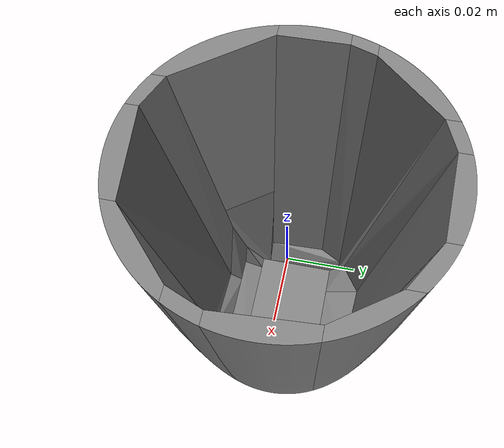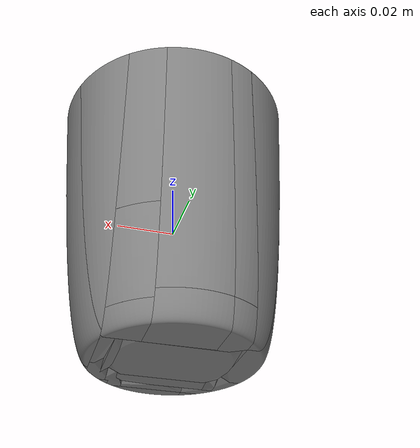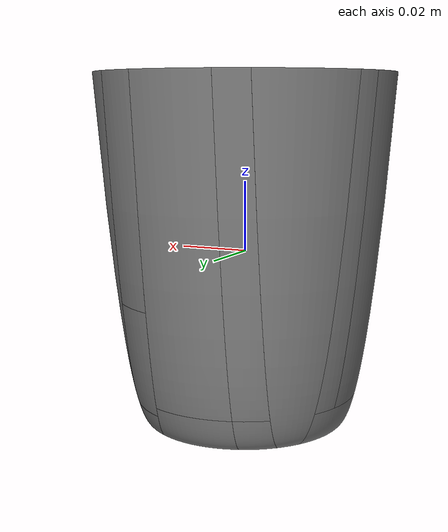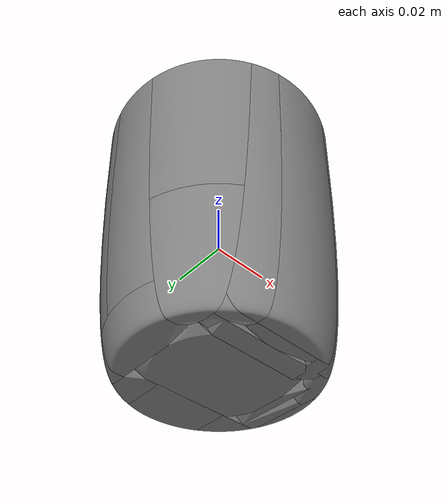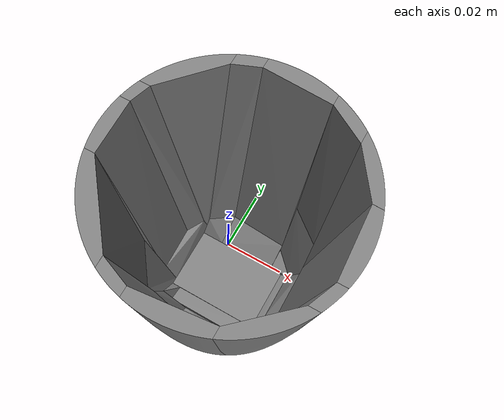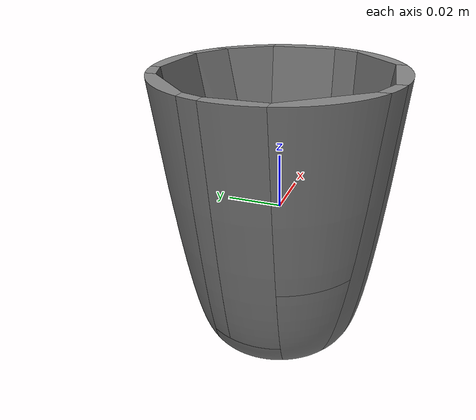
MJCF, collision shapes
<mujoco model="cup">
  <compiler meshdir="."/>

  <asset>
    <mesh name="cup" file="cup.stl"/>
    <mesh name="cup_collision_hull_000" file="cup_collision_hull_000.stl"/>
    <mesh name="cup_collision_hull_001" file="cup_collision_hull_001.stl"/>
    <mesh name="cup_collision_hull_002" file="cup_collision_hull_002.stl"/>
    <mesh name="cup_collision_hull_003" file="cup_collision_hull_003.stl"/>
    <mesh name="cup_collision_hull_004" file="cup_collision_hull_004.stl"/>
    <mesh name="cup_collision_hull_005" file="cup_collision_hull_005.stl"/>
    <mesh name="cup_collision_hull_006" file="cup_collision_hull_006.stl"/>
    <mesh name="cup_collision_hull_007" file="cup_collision_hull_007.stl"/>
    <mesh name="cup_collision_hull_008" file="cup_collision_hull_008.stl"/>
    <mesh name="cup_collision_hull_009" file="cup_collision_hull_009.stl"/>
    <mesh name="cup_collision_hull_010" file="cup_collision_hull_010.stl"/>
    <mesh name="cup_collision_hull_011" file="cup_collision_hull_011.stl"/>
    <mesh name="cup_collision_hull_012" file="cup_collision_hull_012.stl"/>
    <mesh name="cup_collision_hull_013" file="cup_collision_hull_013.stl"/>
    <mesh name="cup_collision_hull_014" file="cup_collision_hull_014.stl"/>
    <mesh name="cup_collision_hull_015" file="cup_collision_hull_015.stl"/>
    <mesh name="cup_collision_hull_016" file="cup_collision_hull_016.stl"/>
    <mesh name="cup_collision_hull_017" file="cup_collision_hull_017.stl"/>
    <mesh name="cup_collision_hull_018" file="cup_collision_hull_018.stl"/>
    <mesh name="cup_collision_hull_019" file="cup_collision_hull_019.stl"/>
    <mesh name="cup_collision_hull_020" file="cup_collision_hull_020.stl"/>
    <mesh name="cup_collision_hull_021" file="cup_collision_hull_021.stl"/>
    <mesh name="cup_collision_hull_022" file="cup_collision_hull_022.stl"/>
    <mesh name="cup_collision_hull_023" file="cup_collision_hull_023.stl"/>
    <mesh name="cup_collision_hull_024" file="cup_collision_hull_024.stl"/>
    <mesh name="cup_collision_hull_025" file="cup_collision_hull_025.stl"/>
    <mesh name="cup_collision_hull_026" file="cup_collision_hull_026.stl"/>
    <mesh name="cup_collision_hull_027" file="cup_collision_hull_027.stl"/>
  </asset>

  <worldbody>
    <body name="object">
      <freejoint name="object_joint"/>
      <geom name="object_visual" type="mesh" mesh="cup"
            contype="0" conaffinity="0" group="2" rgba="0.9 0.9 0.8 1" mass="0"/>
      <geom name="cup_collision_hull_000_collision" type="mesh" mesh="cup_collision_hull_000"
            mass="0.0018" condim="6" friction="1.0 0.002 0.002" priority="1"/>
      <geom name="cup_collision_hull_001_collision" type="mesh" mesh="cup_collision_hull_001"
            mass="0.0018" condim="6" friction="1.0 0.002 0.002" priority="1"/>
      <geom name="cup_collision_hull_002_collision" type="mesh" mesh="cup_collision_hull_002"
            mass="0.0018" condim="6" friction="1.0 0.002 0.002" priority="1"/>
      <geom name="cup_collision_hull_003_collision" type="mesh" mesh="cup_collision_hull_003"
            mass="0.0018" condim="6" friction="1.0 0.002 0.002" priority="1"/>
      <geom name="cup_collision_hull_004_collision" type="mesh" mesh="cup_collision_hull_004"
            mass="0.0018" condim="6" friction="1.0 0.002 0.002" priority="1"/>
      <geom name="cup_collision_hull_005_collision" type="mesh" mesh="cup_collision_hull_005"
            mass="0.0018" condim="6" friction="1.0 0.002 0.002" priority="1"/>
      <geom name="cup_collision_hull_006_collision" type="mesh" mesh="cup_collision_hull_006"
            mass="0.0018" condim="6" friction="1.0 0.002 0.002" priority="1"/>
      <geom name="cup_collision_hull_007_collision" type="mesh" mesh="cup_collision_hull_007"
            mass="0.0018" condim="6" friction="1.0 0.002 0.002" priority="1"/>
      <geom name="cup_collision_hull_008_collision" type="mesh" mesh="cup_collision_hull_008"
            mass="0.0018" condim="6" friction="1.0 0.002 0.002" priority="1"/>
      <geom name="cup_collision_hull_009_collision" type="mesh" mesh="cup_collision_hull_009"
            mass="0.0018" condim="6" friction="1.0 0.002 0.002" priority="1"/>
      <geom name="cup_collision_hull_010_collision" type="mesh" mesh="cup_collision_hull_010"
            mass="0.0018" condim="6" friction="1.0 0.002 0.002" priority="1"/>
      <geom name="cup_collision_hull_011_collision" type="mesh" mesh="cup_collision_hull_011"
            mass="0.0018" condim="6" friction="1.0 0.002 0.002" priority="1"/>
      <geom name="cup_collision_hull_012_collision" type="mesh" mesh="cup_collision_hull_012"
            mass="0.0018" condim="6" friction="1.0 0.002 0.002" priority="1"/>
      <geom name="cup_collision_hull_013_collision" type="mesh" mesh="cup_collision_hull_013"
            mass="0.0018" condim="6" friction="1.0 0.002 0.002" priority="1"/>
      <geom name="cup_collision_hull_014_collision" type="mesh" mesh="cup_collision_hull_014"
            mass="0.0018" condim="6" friction="1.0 0.002 0.002" priority="1"/>
      <geom name="cup_collision_hull_015_collision" type="mesh" mesh="cup_collision_hull_015"
            mass="0.0018" condim="6" friction="1.0 0.002 0.002" priority="1"/>
      <geom name="cup_collision_hull_016_collision" type="mesh" mesh="cup_collision_hull_016"
            mass="0.0018" condim="6" friction="1.0 0.002 0.002" priority="1"/>
      <geom name="cup_collision_hull_017_collision" type="mesh" mesh="cup_collision_hull_017"
            mass="0.0018" condim="6" friction="1.0 0.002 0.002" priority="1"/>
      <geom name="cup_collision_hull_018_collision" type="mesh" mesh="cup_collision_hull_018"
            mass="0.0018" condim="6" friction="1.0 0.002 0.002" priority="1"/>
      <geom name="cup_collision_hull_019_collision" type="mesh" mesh="cup_collision_hull_019"
            mass="0.0018" condim="6" friction="1.0 0.002 0.002" priority="1"/>
      <geom name="cup_collision_hull_020_collision" type="mesh" mesh="cup_collision_hull_020"
            mass="0.0018" condim="6" friction="1.0 0.002 0.002" priority="1"/>
      <geom name="cup_collision_hull_021_collision" type="mesh" mesh="cup_collision_hull_021"
            mass="0.0018" condim="6" friction="1.0 0.002 0.002" priority="1"/>
      <geom name="cup_collision_hull_022_collision" type="mesh" mesh="cup_collision_hull_022"
            mass="0.0018" condim="6" friction="1.0 0.002 0.002" priority="1"/>
      <geom name="cup_collision_hull_023_collision" type="mesh" mesh="cup_collision_hull_023"
            mass="0.0018" condim="6" friction="1.0 0.002 0.002" priority="1"/>
      <geom name="cup_collision_hull_024_collision" type="mesh" mesh="cup_collision_hull_024"
            mass="0.0018" condim="6" friction="1.0 0.002 0.002" priority="1"/>
      <geom name="cup_collision_hull_025_collision" type="mesh" mesh="cup_collision_hull_025"
            mass="0.0018" condim="6" friction="1.0 0.002 0.002" priority="1"/>
      <geom name="cup_collision_hull_026_collision" type="mesh" mesh="cup_collision_hull_026"
            mass="0.0018" condim="6" friction="1.0 0.002 0.002" priority="1"/>
      <geom name="cup_collision_hull_027_collision" type="mesh" mesh="cup_collision_hull_027"
            mass="0.0018" condim="6" friction="1.0 0.002 0.002" priority="1"/>
    </body>
  </worldbody>
</mujoco>
